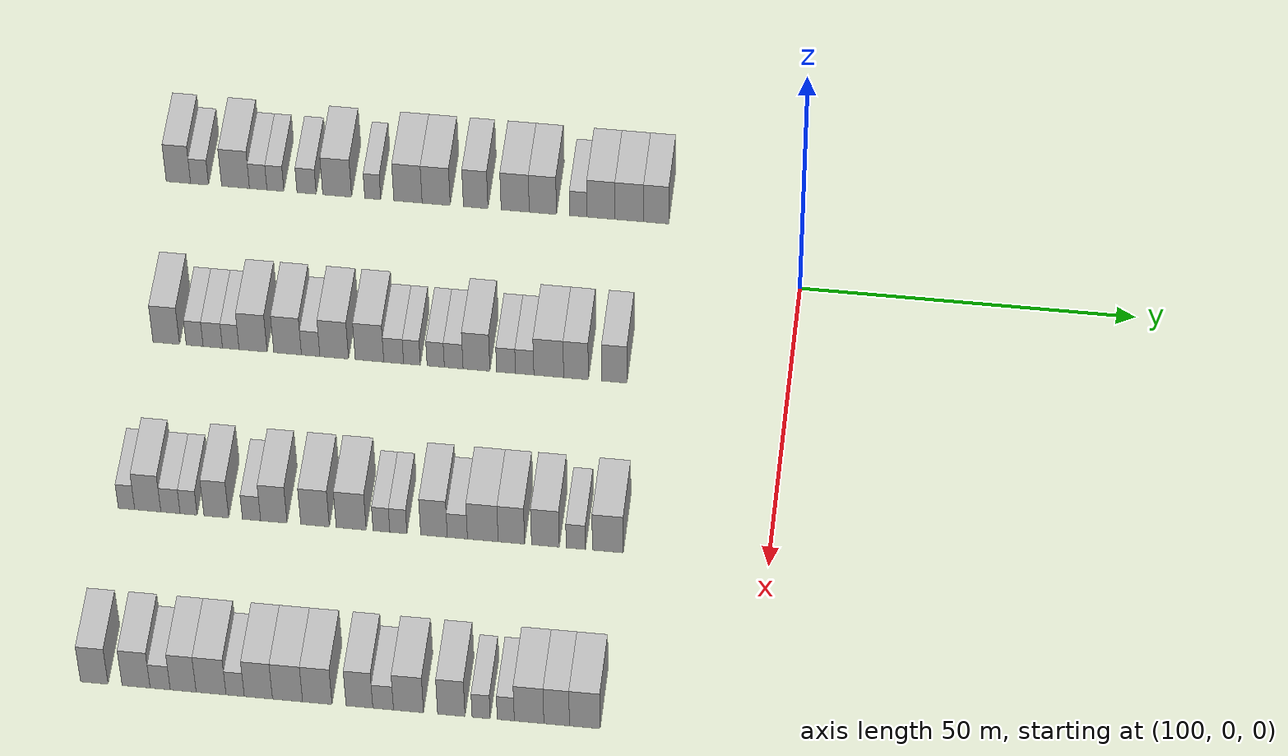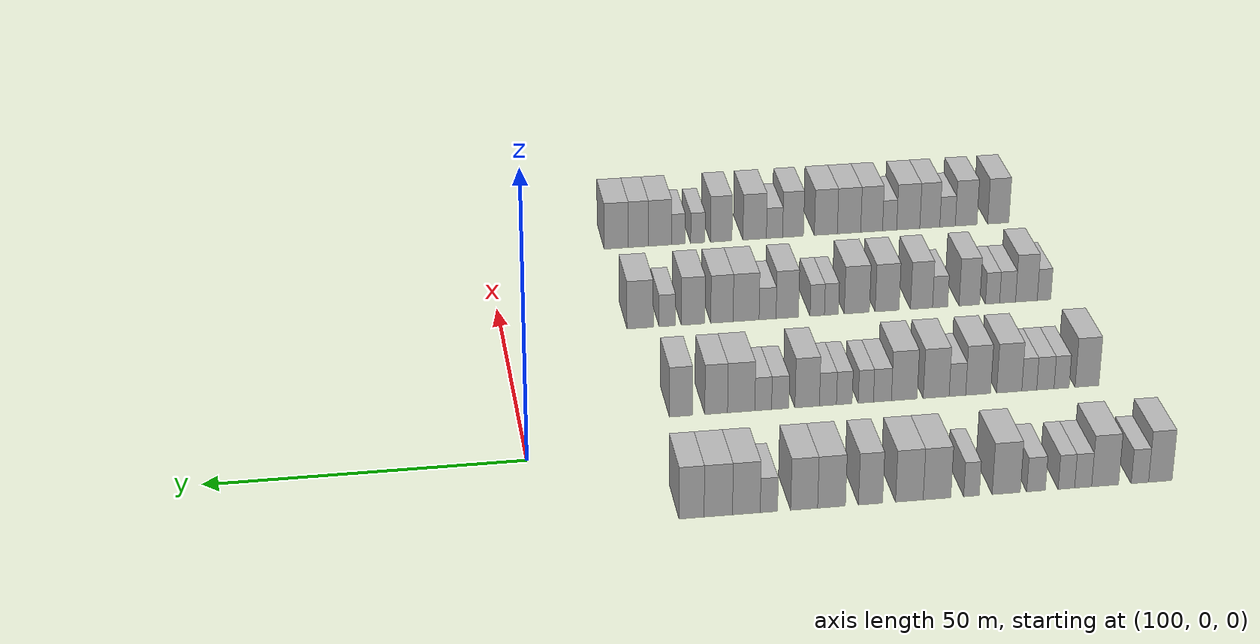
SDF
<sdf version="1.6">
 <world name="default">
  <model name="building_542">
   <static>1</static>
   <pose>85.0000 -95.3361 0 0.000000 0.000000 0.000000</pose>
   <link name="link">
    <pose>0 0 4.50 0 0 0</pose>
    <collision name="collision"><geometry><box><size>10.0000 3.7243 9.0000</size></box></geometry></collision>
    <visual name="visual">
     <cast_shadows>0</cast_shadows>
     <geometry><box><size>10.0000 3.7243 9.0000</size></box></geometry>
     <material>
      <script>
       <uri>model://HANNAS_wall/materials/scripts</uri>
       <uri>model://HANNAS_wall/materials/textures</uri>
       <name>vrc/HANNAS_wall</name>
      </script>
     </material>
    </visual>
   </link>
  </model>
  <model name="building_543">
   <static>1</static>
   <pose>85.0000 -92.1031 0 0.000000 0.000000 0.000000</pose>
   <link name="link">
    <pose>0 0 3.00 0 0 0</pose>
    <collision name="collision"><geometry><box><size>10.0000 2.7416 6.0000</size></box></geometry></collision>
    <visual name="visual">
     <cast_shadows>0</cast_shadows>
     <geometry><box><size>10.0000 2.7416 6.0000</size></box></geometry>
     <material>
      <script>
       <uri>model://HANNAS_wall/materials/scripts</uri>
       <uri>model://HANNAS_wall/materials/textures</uri>
       <name>vrc/HANNAS_wall</name>
      </script>
     </material>
    </visual>
   </link>
  </model>
  <model name="building_544">
   <static>1</static>
   <pose>85.0000 -86.6067 0 0.000000 0.000000 0.000000</pose>
   <link name="link">
    <pose>0 0 4.50 0 0 0</pose>
    <collision name="collision"><geometry><box><size>10.0000 4.2513 9.0000</size></box></geometry></collision>
    <visual name="visual">
     <cast_shadows>0</cast_shadows>
     <geometry><box><size>10.0000 4.2513 9.0000</size></box></geometry>
     <material>
      <script>
       <uri>model://HANNAS_wall/materials/scripts</uri>
       <uri>model://HANNAS_wall/materials/textures</uri>
       <name>vrc/HANNAS_wall</name>
      </script>
     </material>
    </visual>
   </link>
  </model>
  <model name="building_545">
   <static>1</static>
   <pose>85.0000 -83.1458 0 0.000000 0.000000 0.000000</pose>
   <link name="link">
    <pose>0 0 3.00 0 0 0</pose>
    <collision name="collision"><geometry><box><size>10.0000 2.6704 6.0000</size></box></geometry></collision>
    <visual name="visual">
     <cast_shadows>0</cast_shadows>
     <geometry><box><size>10.0000 2.6704 6.0000</size></box></geometry>
     <material>
      <script>
       <uri>model://HANNAS_wall/materials/scripts</uri>
       <uri>model://HANNAS_wall/materials/textures</uri>
       <name>vrc/HANNAS_wall</name>
      </script>
     </material>
    </visual>
   </link>
  </model>
  <model name="building_546">
   <static>1</static>
   <pose>85.0000 -80.5166 0 0.000000 0.000000 0.000000</pose>
   <link name="link">
    <pose>0 0 3.00 0 0 0</pose>
    <collision name="collision"><geometry><box><size>10.0000 2.5880 6.0000</size></box></geometry></collision>
    <visual name="visual">
     <cast_shadows>0</cast_shadows>
     <geometry><box><size>10.0000 2.5880 6.0000</size></box></geometry>
     <material>
      <script>
       <uri>model://HANNAS_wall/materials/scripts</uri>
       <uri>model://HANNAS_wall/materials/textures</uri>
       <name>vrc/HANNAS_wall</name>
      </script>
     </material>
    </visual>
   </link>
  </model>
  <model name="building_547">
   <static>1</static>
   <pose>85.0000 -75.7582 0 0.000000 0.000000 0.000000</pose>
   <link name="link">
    <pose>0 0 3.00 0 0 0</pose>
    <collision name="collision"><geometry><box><size>10.0000 2.9287 6.0000</size></box></geometry></collision>
    <visual name="visual">
     <cast_shadows>0</cast_shadows>
     <geometry><box><size>10.0000 2.9287 6.0000</size></box></geometry>
     <material>
      <script>
       <uri>model://HANNAS_wall/materials/scripts</uri>
       <uri>model://HANNAS_wall/materials/textures</uri>
       <name>vrc/HANNAS_wall</name>
      </script>
     </material>
    </visual>
   </link>
  </model>
  <model name="building_548">
   <static>1</static>
   <pose>85.0000 -71.0945 0 0.000000 0.000000 0.000000</pose>
   <link name="link">
    <pose>0 0 4.50 0 0 0</pose>
    <collision name="collision"><geometry><box><size>10.0000 4.3988 9.0000</size></box></geometry></collision>
    <visual name="visual">
     <cast_shadows>0</cast_shadows>
     <geometry><box><size>10.0000 4.3988 9.0000</size></box></geometry>
     <material>
      <script>
       <uri>model://HANNAS_wall/materials/scripts</uri>
       <uri>model://HANNAS_wall/materials/textures</uri>
       <name>vrc/HANNAS_wall</name>
      </script>
     </material>
    </visual>
   </link>
  </model>
  <model name="building_549">
   <static>1</static>
   <pose>85.0000 -65.6777 0 0.000000 0.000000 0.000000</pose>
   <link name="link">
    <pose>0 0 3.00 0 0 0</pose>
    <collision name="collision"><geometry><box><size>10.0000 2.4347 6.0000</size></box></geometry></collision>
    <visual name="visual">
     <cast_shadows>0</cast_shadows>
     <geometry><box><size>10.0000 2.4347 6.0000</size></box></geometry>
     <material>
      <script>
       <uri>model://HANNAS_wall/materials/scripts</uri>
       <uri>model://HANNAS_wall/materials/textures</uri>
       <name>vrc/HANNAS_wall</name>
      </script>
     </material>
    </visual>
   </link>
  </model>
  <model name="building_550">
   <static>1</static>
   <pose>85.0000 -60.3130 0 0.000000 0.000000 0.000000</pose>
   <link name="link">
    <pose>0 0 4.50 0 0 0</pose>
    <collision name="collision"><geometry><box><size>10.0000 4.2946 9.0000</size></box></geometry></collision>
    <visual name="visual">
     <cast_shadows>0</cast_shadows>
     <geometry><box><size>10.0000 4.2946 9.0000</size></box></geometry>
     <material>
      <script>
       <uri>model://HANNAS_wall/materials/scripts</uri>
       <uri>model://HANNAS_wall/materials/textures</uri>
       <name>vrc/HANNAS_wall</name>
      </script>
     </material>
    </visual>
   </link>
  </model>
  <model name="building_551">
   <static>1</static>
   <pose>85.0000 -56.0261 0 0.000000 0.000000 0.000000</pose>
   <link name="link">
    <pose>0 0 4.50 0 0 0</pose>
    <collision name="collision"><geometry><box><size>10.0000 4.2793 9.0000</size></box></geometry></collision>
    <visual name="visual">
     <cast_shadows>0</cast_shadows>
     <geometry><box><size>10.0000 4.2793 9.0000</size></box></geometry>
     <material>
      <script>
       <uri>model://HANNAS_wall/materials/scripts</uri>
       <uri>model://HANNAS_wall/materials/textures</uri>
       <name>vrc/HANNAS_wall</name>
      </script>
     </material>
    </visual>
   </link>
  </model>
  <model name="building_552">
   <static>1</static>
   <pose>85.0000 -50.0215 0 0.000000 0.000000 0.000000</pose>
   <link name="link">
    <pose>0 0 4.50 0 0 0</pose>
    <collision name="collision"><geometry><box><size>10.0000 3.7298 9.0000</size></box></geometry></collision>
    <visual name="visual">
     <cast_shadows>0</cast_shadows>
     <geometry><box><size>10.0000 3.7298 9.0000</size></box></geometry>
     <material>
      <script>
       <uri>model://HANNAS_wall/materials/scripts</uri>
       <uri>model://HANNAS_wall/materials/textures</uri>
       <name>vrc/HANNAS_wall</name>
      </script>
     </material>
    </visual>
   </link>
  </model>
  <model name="building_553">
   <static>1</static>
   <pose>85.0000 -44.0218 0 0.000000 0.000000 0.000000</pose>
   <link name="link">
    <pose>0 0 4.50 0 0 0</pose>
    <collision name="collision"><geometry><box><size>10.0000 4.2697 9.0000</size></box></geometry></collision>
    <visual name="visual">
     <cast_shadows>0</cast_shadows>
     <geometry><box><size>10.0000 4.2697 9.0000</size></box></geometry>
     <material>
      <script>
       <uri>model://HANNAS_wall/materials/scripts</uri>
       <uri>model://HANNAS_wall/materials/textures</uri>
       <name>vrc/HANNAS_wall</name>
      </script>
     </material>
    </visual>
   </link>
  </model>
  <model name="building_554">
   <static>1</static>
   <pose>85.0000 -39.8189 0 0.000000 0.000000 0.000000</pose>
   <link name="link">
    <pose>0 0 4.50 0 0 0</pose>
    <collision name="collision"><geometry><box><size>10.0000 4.1361 9.0000</size></box></geometry></collision>
    <visual name="visual">
     <cast_shadows>0</cast_shadows>
     <geometry><box><size>10.0000 4.1361 9.0000</size></box></geometry>
     <material>
      <script>
       <uri>model://HANNAS_wall/materials/scripts</uri>
       <uri>model://HANNAS_wall/materials/textures</uri>
       <name>vrc/HANNAS_wall</name>
      </script>
     </material>
    </visual>
   </link>
  </model>
  <model name="building_555">
   <static>1</static>
   <pose>85.0000 -34.4273 0 0.000000 0.000000 0.000000</pose>
   <link name="link">
    <pose>0 0 3.00 0 0 0</pose>
    <collision name="collision"><geometry><box><size>10.0000 2.6471 6.0000</size></box></geometry></collision>
    <visual name="visual">
     <cast_shadows>0</cast_shadows>
     <geometry><box><size>10.0000 2.6471 6.0000</size></box></geometry>
     <material>
      <script>
       <uri>model://HANNAS_wall/materials/scripts</uri>
       <uri>model://HANNAS_wall/materials/textures</uri>
       <name>vrc/HANNAS_wall</name>
      </script>
     </material>
    </visual>
   </link>
  </model>
  <model name="building_556">
   <static>1</static>
   <pose>85.0000 -30.9911 0 0.000000 0.000000 0.000000</pose>
   <link name="link">
    <pose>0 0 4.50 0 0 0</pose>
    <collision name="collision"><geometry><box><size>10.0000 4.2252 9.0000</size></box></geometry></collision>
    <visual name="visual">
     <cast_shadows>0</cast_shadows>
     <geometry><box><size>10.0000 4.2252 9.0000</size></box></geometry>
     <material>
      <script>
       <uri>model://HANNAS_wall/materials/scripts</uri>
       <uri>model://HANNAS_wall/materials/textures</uri>
       <name>vrc/HANNAS_wall</name>
      </script>
     </material>
    </visual>
   </link>
  </model>
  <model name="building_557">
   <static>1</static>
   <pose>85.0000 -26.7187 0 0.000000 0.000000 0.000000</pose>
   <link name="link">
    <pose>0 0 4.50 0 0 0</pose>
    <collision name="collision"><geometry><box><size>10.0000 4.3197 9.0000</size></box></geometry></collision>
    <visual name="visual">
     <cast_shadows>0</cast_shadows>
     <geometry><box><size>10.0000 4.3197 9.0000</size></box></geometry>
     <material>
      <script>
       <uri>model://HANNAS_wall/materials/scripts</uri>
       <uri>model://HANNAS_wall/materials/textures</uri>
       <name>vrc/HANNAS_wall</name>
      </script>
     </material>
    </visual>
   </link>
  </model>
  <model name="building_558">
   <static>1</static>
   <pose>85.0000 -22.6541 0 0.000000 0.000000 0.000000</pose>
   <link name="link">
    <pose>0 0 4.50 0 0 0</pose>
    <collision name="collision"><geometry><box><size>10.0000 3.8094 9.0000</size></box></geometry></collision>
    <visual name="visual">
     <cast_shadows>0</cast_shadows>
     <geometry><box><size>10.0000 3.8094 9.0000</size></box></geometry>
     <material>
      <script>
       <uri>model://HANNAS_wall/materials/scripts</uri>
       <uri>model://HANNAS_wall/materials/textures</uri>
       <name>vrc/HANNAS_wall</name>
      </script>
     </material>
    </visual>
   </link>
  </model>
  <model name="building_776">
   <static>1</static>
   <pose>115.0000 -92.3758 0 0.000000 0.000000 0.000000</pose>
   <link name="link">
    <pose>0 0 4.50 0 0 0</pose>
    <collision name="collision"><geometry><box><size>10.0000 3.9749 9.0000</size></box></geometry></collision>
    <visual name="visual">
     <cast_shadows>0</cast_shadows>
     <geometry><box><size>10.0000 3.9749 9.0000</size></box></geometry>
     <material>
      <script>
       <uri>model://HANNAS_wall/materials/scripts</uri>
       <uri>model://HANNAS_wall/materials/textures</uri>
       <name>vrc/HANNAS_wall</name>
      </script>
     </material>
    </visual>
   </link>
  </model>
  <model name="building_777">
   <static>1</static>
   <pose>115.0000 -88.1288 0 0.000000 0.000000 0.000000</pose>
   <link name="link">
    <pose>0 0 3.00 0 0 0</pose>
    <collision name="collision"><geometry><box><size>10.0000 2.5192 6.0000</size></box></geometry></collision>
    <visual name="visual">
     <cast_shadows>0</cast_shadows>
     <geometry><box><size>10.0000 2.5192 6.0000</size></box></geometry>
     <material>
      <script>
       <uri>model://HANNAS_wall/materials/scripts</uri>
       <uri>model://HANNAS_wall/materials/textures</uri>
       <name>vrc/HANNAS_wall</name>
      </script>
     </material>
    </visual>
   </link>
  </model>
  <model name="building_778">
   <static>1</static>
   <pose>115.0000 -85.4225 0 0.000000 0.000000 0.000000</pose>
   <link name="link">
    <pose>0 0 3.00 0 0 0</pose>
    <collision name="collision"><geometry><box><size>10.0000 2.8933 6.0000</size></box></geometry></collision>
    <visual name="visual">
     <cast_shadows>0</cast_shadows>
     <geometry><box><size>10.0000 2.8933 6.0000</size></box></geometry>
     <material>
      <script>
       <uri>model://HANNAS_wall/materials/scripts</uri>
       <uri>model://HANNAS_wall/materials/textures</uri>
       <name>vrc/HANNAS_wall</name>
      </script>
     </material>
    </visual>
   </link>
  </model>
  <model name="building_779">
   <static>1</static>
   <pose>115.0000 -82.7348 0 0.000000 0.000000 0.000000</pose>
   <link name="link">
    <pose>0 0 3.00 0 0 0</pose>
    <collision name="collision"><geometry><box><size>10.0000 2.4821 6.0000</size></box></geometry></collision>
    <visual name="visual">
     <cast_shadows>0</cast_shadows>
     <geometry><box><size>10.0000 2.4821 6.0000</size></box></geometry>
     <material>
      <script>
       <uri>model://HANNAS_wall/materials/scripts</uri>
       <uri>model://HANNAS_wall/materials/textures</uri>
       <name>vrc/HANNAS_wall</name>
      </script>
     </material>
    </visual>
   </link>
  </model>
  <model name="building_780">
   <static>1</static>
   <pose>115.0000 -79.3990 0 0.000000 0.000000 0.000000</pose>
   <link name="link">
    <pose>0 0 4.50 0 0 0</pose>
    <collision name="collision"><geometry><box><size>10.0000 4.1896 9.0000</size></box></geometry></collision>
    <visual name="visual">
     <cast_shadows>0</cast_shadows>
     <geometry><box><size>10.0000 4.1896 9.0000</size></box></geometry>
     <material>
      <script>
       <uri>model://HANNAS_wall/materials/scripts</uri>
       <uri>model://HANNAS_wall/materials/textures</uri>
       <name>vrc/HANNAS_wall</name>
      </script>
     </material>
    </visual>
   </link>
  </model>
  <model name="building_781">
   <static>1</static>
   <pose>115.0000 -74.2405 0 0.000000 0.000000 0.000000</pose>
   <link name="link">
    <pose>0 0 4.50 0 0 0</pose>
    <collision name="collision"><geometry><box><size>10.0000 4.1274 9.0000</size></box></geometry></collision>
    <visual name="visual">
     <cast_shadows>0</cast_shadows>
     <geometry><box><size>10.0000 4.1274 9.0000</size></box></geometry>
     <material>
      <script>
       <uri>model://HANNAS_wall/materials/scripts</uri>
       <uri>model://HANNAS_wall/materials/textures</uri>
       <name>vrc/HANNAS_wall</name>
      </script>
     </material>
    </visual>
   </link>
  </model>
  <model name="building_782">
   <static>1</static>
   <pose>115.0000 -70.8045 0 0.000000 0.000000 0.000000</pose>
   <link name="link">
    <pose>0 0 3.00 0 0 0</pose>
    <collision name="collision"><geometry><box><size>10.0000 2.7446 6.0000</size></box></geometry></collision>
    <visual name="visual">
     <cast_shadows>0</cast_shadows>
     <geometry><box><size>10.0000 2.7446 6.0000</size></box></geometry>
     <material>
      <script>
       <uri>model://HANNAS_wall/materials/scripts</uri>
       <uri>model://HANNAS_wall/materials/textures</uri>
       <name>vrc/HANNAS_wall</name>
      </script>
     </material>
    </visual>
   </link>
  </model>
  <model name="building_783">
   <static>1</static>
   <pose>115.0000 -67.2941 0 0.000000 0.000000 0.000000</pose>
   <link name="link">
    <pose>0 0 4.50 0 0 0</pose>
    <collision name="collision"><geometry><box><size>10.0000 4.2762 9.0000</size></box></geometry></collision>
    <visual name="visual">
     <cast_shadows>0</cast_shadows>
     <geometry><box><size>10.0000 4.2762 9.0000</size></box></geometry>
     <material>
      <script>
       <uri>model://HANNAS_wall/materials/scripts</uri>
       <uri>model://HANNAS_wall/materials/textures</uri>
       <name>vrc/HANNAS_wall</name>
      </script>
     </material>
    </visual>
   </link>
  </model>
  <model name="building_784">
   <static>1</static>
   <pose>115.0000 -62.0317 0 0.000000 0.000000 0.000000</pose>
   <link name="link">
    <pose>0 0 4.50 0 0 0</pose>
    <collision name="collision"><geometry><box><size>10.0000 4.2484 9.0000</size></box></geometry></collision>
    <visual name="visual">
     <cast_shadows>0</cast_shadows>
     <geometry><box><size>10.0000 4.2484 9.0000</size></box></geometry>
     <material>
      <script>
       <uri>model://HANNAS_wall/materials/scripts</uri>
       <uri>model://HANNAS_wall/materials/textures</uri>
       <name>vrc/HANNAS_wall</name>
      </script>
     </material>
    </visual>
   </link>
  </model>
  <model name="building_785">
   <static>1</static>
   <pose>115.0000 -58.4320 0 0.000000 0.000000 0.000000</pose>
   <link name="link">
    <pose>0 0 3.00 0 0 0</pose>
    <collision name="collision"><geometry><box><size>10.0000 2.9511 6.0000</size></box></geometry></collision>
    <visual name="visual">
     <cast_shadows>0</cast_shadows>
     <geometry><box><size>10.0000 2.9511 6.0000</size></box></geometry>
     <material>
      <script>
       <uri>model://HANNAS_wall/materials/scripts</uri>
       <uri>model://HANNAS_wall/materials/textures</uri>
       <name>vrc/HANNAS_wall</name>
      </script>
     </material>
    </visual>
   </link>
  </model>
  <model name="building_786">
   <static>1</static>
   <pose>115.0000 -55.7095 0 0.000000 0.000000 0.000000</pose>
   <link name="link">
    <pose>0 0 3.00 0 0 0</pose>
    <collision name="collision"><geometry><box><size>10.0000 2.4937 6.0000</size></box></geometry></collision>
    <visual name="visual">
     <cast_shadows>0</cast_shadows>
     <geometry><box><size>10.0000 2.4937 6.0000</size></box></geometry>
     <material>
      <script>
       <uri>model://HANNAS_wall/materials/scripts</uri>
       <uri>model://HANNAS_wall/materials/textures</uri>
       <name>vrc/HANNAS_wall</name>
      </script>
     </material>
    </visual>
   </link>
  </model>
  <model name="building_787">
   <static>1</static>
   <pose>115.0000 -52.1789 0 0.000000 0.000000 0.000000</pose>
   <link name="link">
    <pose>0 0 3.00 0 0 0</pose>
    <collision name="collision"><geometry><box><size>10.0000 2.5676 6.0000</size></box></geometry></collision>
    <visual name="visual">
     <cast_shadows>0</cast_shadows>
     <geometry><box><size>10.0000 2.5676 6.0000</size></box></geometry>
     <material>
      <script>
       <uri>model://HANNAS_wall/materials/scripts</uri>
       <uri>model://HANNAS_wall/materials/textures</uri>
       <name>vrc/HANNAS_wall</name>
      </script>
     </material>
    </visual>
   </link>
  </model>
  <model name="building_788">
   <static>1</static>
   <pose>115.0000 -49.5035 0 0.000000 0.000000 0.000000</pose>
   <link name="link">
    <pose>0 0 3.00 0 0 0</pose>
    <collision name="collision"><geometry><box><size>10.0000 2.7832 6.0000</size></box></geometry></collision>
    <visual name="visual">
     <cast_shadows>0</cast_shadows>
     <geometry><box><size>10.0000 2.7832 6.0000</size></box></geometry>
     <material>
      <script>
       <uri>model://HANNAS_wall/materials/scripts</uri>
       <uri>model://HANNAS_wall/materials/textures</uri>
       <name>vrc/HANNAS_wall</name>
      </script>
     </material>
    </visual>
   </link>
  </model>
  <model name="building_789">
   <static>1</static>
   <pose>115.0000 -46.1153 0 0.000000 0.000000 0.000000</pose>
   <link name="link">
    <pose>0 0 4.50 0 0 0</pose>
    <collision name="collision"><geometry><box><size>10.0000 3.9932 9.0000</size></box></geometry></collision>
    <visual name="visual">
     <cast_shadows>0</cast_shadows>
     <geometry><box><size>10.0000 3.9932 9.0000</size></box></geometry>
     <material>
      <script>
       <uri>model://HANNAS_wall/materials/scripts</uri>
       <uri>model://HANNAS_wall/materials/textures</uri>
       <name>vrc/HANNAS_wall</name>
      </script>
     </material>
    </visual>
   </link>
  </model>
  <model name="building_790">
   <static>1</static>
   <pose>115.0000 -41.7174 0 0.000000 0.000000 0.000000</pose>
   <link name="link">
    <pose>0 0 3.00 0 0 0</pose>
    <collision name="collision"><geometry><box><size>10.0000 2.8027 6.0000</size></box></geometry></collision>
    <visual name="visual">
     <cast_shadows>0</cast_shadows>
     <geometry><box><size>10.0000 2.8027 6.0000</size></box></geometry>
     <material>
      <script>
       <uri>model://HANNAS_wall/materials/scripts</uri>
       <uri>model://HANNAS_wall/materials/textures</uri>
       <name>vrc/HANNAS_wall</name>
      </script>
     </material>
    </visual>
   </link>
  </model>
  <model name="building_791">
   <static>1</static>
   <pose>115.0000 -38.9551 0 0.000000 0.000000 0.000000</pose>
   <link name="link">
    <pose>0 0 3.00 0 0 0</pose>
    <collision name="collision"><geometry><box><size>10.0000 2.7219 6.0000</size></box></geometry></collision>
    <visual name="visual">
     <cast_shadows>0</cast_shadows>
     <geometry><box><size>10.0000 2.7219 6.0000</size></box></geometry>
     <material>
      <script>
       <uri>model://HANNAS_wall/materials/scripts</uri>
       <uri>model://HANNAS_wall/materials/textures</uri>
       <name>vrc/HANNAS_wall</name>
      </script>
     </material>
    </visual>
   </link>
  </model>
  <model name="building_792">
   <static>1</static>
   <pose>115.0000 -35.3824 0 0.000000 0.000000 0.000000</pose>
   <link name="link">
    <pose>0 0 4.50 0 0 0</pose>
    <collision name="collision"><geometry><box><size>10.0000 4.4235 9.0000</size></box></geometry></collision>
    <visual name="visual">
     <cast_shadows>0</cast_shadows>
     <geometry><box><size>10.0000 4.4235 9.0000</size></box></geometry>
     <material>
      <script>
       <uri>model://HANNAS_wall/materials/scripts</uri>
       <uri>model://HANNAS_wall/materials/textures</uri>
       <name>vrc/HANNAS_wall</name>
      </script>
     </material>
    </visual>
   </link>
  </model>
  <model name="building_793">
   <static>1</static>
   <pose>115.0000 -31.3342 0 0.000000 0.000000 0.000000</pose>
   <link name="link">
    <pose>0 0 4.50 0 0 0</pose>
    <collision name="collision"><geometry><box><size>10.0000 3.6728 9.0000</size></box></geometry></collision>
    <visual name="visual">
     <cast_shadows>0</cast_shadows>
     <geometry><box><size>10.0000 3.6728 9.0000</size></box></geometry>
     <material>
      <script>
       <uri>model://HANNAS_wall/materials/scripts</uri>
       <uri>model://HANNAS_wall/materials/textures</uri>
       <name>vrc/HANNAS_wall</name>
      </script>
     </material>
    </visual>
   </link>
  </model>
  <model name="building_794">
   <static>1</static>
   <pose>115.0000 -25.6411 0 0.000000 0.000000 0.000000</pose>
   <link name="link">
    <pose>0 0 4.50 0 0 0</pose>
    <collision name="collision"><geometry><box><size>10.0000 3.7134 9.0000</size></box></geometry></collision>
    <visual name="visual">
     <cast_shadows>0</cast_shadows>
     <geometry><box><size>10.0000 3.7134 9.0000</size></box></geometry>
     <material>
      <script>
       <uri>model://HANNAS_wall/materials/scripts</uri>
       <uri>model://HANNAS_wall/materials/textures</uri>
       <name>vrc/HANNAS_wall</name>
      </script>
     </material>
    </visual>
   </link>
  </model>
  <model name="building_1009">
   <static>1</static>
   <pose>145.0000 -93.3875 0 0.000000 0.000000 0.000000</pose>
   <link name="link">
    <pose>0 0 3.00 0 0 0</pose>
    <collision name="collision"><geometry><box><size>10.0000 2.4016 6.0000</size></box></geometry></collision>
    <visual name="visual">
     <cast_shadows>0</cast_shadows>
     <geometry><box><size>10.0000 2.4016 6.0000</size></box></geometry>
     <material>
      <script>
       <uri>model://HANNAS_wall/materials/scripts</uri>
       <uri>model://HANNAS_wall/materials/textures</uri>
       <name>vrc/HANNAS_wall</name>
      </script>
     </material>
    </visual>
   </link>
  </model>
  <model name="building_1010">
   <static>1</static>
   <pose>145.0000 -90.2736 0 0.000000 0.000000 0.000000</pose>
   <link name="link">
    <pose>0 0 4.50 0 0 0</pose>
    <collision name="collision"><geometry><box><size>10.0000 3.8262 9.0000</size></box></geometry></collision>
    <visual name="visual">
     <cast_shadows>0</cast_shadows>
     <geometry><box><size>10.0000 3.8262 9.0000</size></box></geometry>
     <material>
      <script>
       <uri>model://HANNAS_wall/materials/scripts</uri>
       <uri>model://HANNAS_wall/materials/textures</uri>
       <name>vrc/HANNAS_wall</name>
      </script>
     </material>
    </visual>
   </link>
  </model>
  <model name="building_1011">
   <static>1</static>
   <pose>145.0000 -86.9529 0 0.000000 0.000000 0.000000</pose>
   <link name="link">
    <pose>0 0 3.00 0 0 0</pose>
    <collision name="collision"><geometry><box><size>10.0000 2.8152 6.0000</size></box></geometry></collision>
    <visual name="visual">
     <cast_shadows>0</cast_shadows>
     <geometry><box><size>10.0000 2.8152 6.0000</size></box></geometry>
     <material>
      <script>
       <uri>model://HANNAS_wall/materials/scripts</uri>
       <uri>model://HANNAS_wall/materials/textures</uri>
       <name>vrc/HANNAS_wall</name>
      </script>
     </material>
    </visual>
   </link>
  </model>
  <model name="building_1012">
   <static>1</static>
   <pose>145.0000 -84.2981 0 0.000000 0.000000 0.000000</pose>
   <link name="link">
    <pose>0 0 3.00 0 0 0</pose>
    <collision name="collision"><geometry><box><size>10.0000 2.4945 6.0000</size></box></geometry></collision>
    <visual name="visual">
     <cast_shadows>0</cast_shadows>
     <geometry><box><size>10.0000 2.4945 6.0000</size></box></geometry>
     <material>
      <script>
       <uri>model://HANNAS_wall/materials/scripts</uri>
       <uri>model://HANNAS_wall/materials/textures</uri>
       <name>vrc/HANNAS_wall</name>
      </script>
     </material>
    </visual>
   </link>
  </model>
  <model name="building_1013">
   <static>1</static>
   <pose>145.0000 -80.2375 0 0.000000 0.000000 0.000000</pose>
   <link name="link">
    <pose>0 0 4.50 0 0 0</pose>
    <collision name="collision"><geometry><box><size>10.0000 3.6266 9.0000</size></box></geometry></collision>
    <visual name="visual">
     <cast_shadows>0</cast_shadows>
     <geometry><box><size>10.0000 3.6266 9.0000</size></box></geometry>
     <material>
      <script>
       <uri>model://HANNAS_wall/materials/scripts</uri>
       <uri>model://HANNAS_wall/materials/textures</uri>
       <name>vrc/HANNAS_wall</name>
      </script>
     </material>
    </visual>
   </link>
  </model>
  <model name="building_1014">
   <static>1</static>
   <pose>145.0000 -75.0963 0 0.000000 0.000000 0.000000</pose>
   <link name="link">
    <pose>0 0 3.00 0 0 0</pose>
    <collision name="collision"><geometry><box><size>10.0000 2.6558 6.0000</size></box></geometry></collision>
    <visual name="visual">
     <cast_shadows>0</cast_shadows>
     <geometry><box><size>10.0000 2.6558 6.0000</size></box></geometry>
     <material>
      <script>
       <uri>model://HANNAS_wall/materials/scripts</uri>
       <uri>model://HANNAS_wall/materials/textures</uri>
       <name>vrc/HANNAS_wall</name>
      </script>
     </material>
    </visual>
   </link>
  </model>
  <model name="building_1015">
   <static>1</static>
   <pose>145.0000 -71.8394 0 0.000000 0.000000 0.000000</pose>
   <link name="link">
    <pose>0 0 4.50 0 0 0</pose>
    <collision name="collision"><geometry><box><size>10.0000 3.8580 9.0000</size></box></geometry></collision>
    <visual name="visual">
     <cast_shadows>0</cast_shadows>
     <geometry><box><size>10.0000 3.8580 9.0000</size></box></geometry>
     <material>
      <script>
       <uri>model://HANNAS_wall/materials/scripts</uri>
       <uri>model://HANNAS_wall/materials/textures</uri>
       <name>vrc/HANNAS_wall</name>
      </script>
     </material>
    </visual>
   </link>
  </model>
  <model name="building_1016">
   <static>1</static>
   <pose>145.0000 -65.8280 0 0.000000 0.000000 0.000000</pose>
   <link name="link">
    <pose>0 0 4.50 0 0 0</pose>
    <collision name="collision"><geometry><box><size>10.0000 4.1648 9.0000</size></box></geometry></collision>
    <visual name="visual">
     <cast_shadows>0</cast_shadows>
     <geometry><box><size>10.0000 4.1648 9.0000</size></box></geometry>
     <material>
      <script>
       <uri>model://HANNAS_wall/materials/scripts</uri>
       <uri>model://HANNAS_wall/materials/textures</uri>
       <name>vrc/HANNAS_wall</name>
      </script>
     </material>
    </visual>
   </link>
  </model>
  <model name="building_1017">
   <static>1</static>
   <pose>145.0000 -60.5591 0 0.000000 0.000000 0.000000</pose>
   <link name="link">
    <pose>0 0 4.50 0 0 0</pose>
    <collision name="collision"><geometry><box><size>10.0000 4.3730 9.0000</size></box></geometry></collision>
    <visual name="visual">
     <cast_shadows>0</cast_shadows>
     <geometry><box><size>10.0000 4.3730 9.0000</size></box></geometry>
     <material>
      <script>
       <uri>model://HANNAS_wall/materials/scripts</uri>
       <uri>model://HANNAS_wall/materials/textures</uri>
       <name>vrc/HANNAS_wall</name>
      </script>
     </material>
    </visual>
   </link>
  </model>
  <model name="building_1018">
   <static>1</static>
   <pose>145.0000 -56.1542 0 0.000000 0.000000 0.000000</pose>
   <link name="link">
    <pose>0 0 3.00 0 0 0</pose>
    <collision name="collision"><geometry><box><size>10.0000 2.4368 6.0000</size></box></geometry></collision>
    <visual name="visual">
     <cast_shadows>0</cast_shadows>
     <geometry><box><size>10.0000 2.4368 6.0000</size></box></geometry>
     <material>
      <script>
       <uri>model://HANNAS_wall/materials/scripts</uri>
       <uri>model://HANNAS_wall/materials/textures</uri>
       <name>vrc/HANNAS_wall</name>
      </script>
     </material>
    </visual>
   </link>
  </model>
  <model name="building_1019">
   <static>1</static>
   <pose>145.0000 -53.6908 0 0.000000 0.000000 0.000000</pose>
   <link name="link">
    <pose>0 0 3.00 0 0 0</pose>
    <collision name="collision"><geometry><box><size>10.0000 2.4900 6.0000</size></box></geometry></collision>
    <visual name="visual">
     <cast_shadows>0</cast_shadows>
     <geometry><box><size>10.0000 2.4900 6.0000</size></box></geometry>
     <material>
      <script>
       <uri>model://HANNAS_wall/materials/scripts</uri>
       <uri>model://HANNAS_wall/materials/textures</uri>
       <name>vrc/HANNAS_wall</name>
      </script>
     </material>
    </visual>
   </link>
  </model>
  <model name="building_1020">
   <static>1</static>
   <pose>145.0000 -48.5083 0 0.000000 0.000000 0.000000</pose>
   <link name="link">
    <pose>0 0 4.50 0 0 0</pose>
    <collision name="collision"><geometry><box><size>10.0000 3.8751 9.0000</size></box></geometry></collision>
    <visual name="visual">
     <cast_shadows>0</cast_shadows>
     <geometry><box><size>10.0000 3.8751 9.0000</size></box></geometry>
     <material>
      <script>
       <uri>model://HANNAS_wall/materials/scripts</uri>
       <uri>model://HANNAS_wall/materials/textures</uri>
       <name>vrc/HANNAS_wall</name>
      </script>
     </material>
    </visual>
   </link>
  </model>
  <model name="building_1021">
   <static>1</static>
   <pose>145.0000 -45.1075 0 0.000000 0.000000 0.000000</pose>
   <link name="link">
    <pose>0 0 3.00 0 0 0</pose>
    <collision name="collision"><geometry><box><size>10.0000 2.9265 6.0000</size></box></geometry></collision>
    <visual name="visual">
     <cast_shadows>0</cast_shadows>
     <geometry><box><size>10.0000 2.9265 6.0000</size></box></geometry>
     <material>
      <script>
       <uri>model://HANNAS_wall/materials/scripts</uri>
       <uri>model://HANNAS_wall/materials/textures</uri>
       <name>vrc/HANNAS_wall</name>
      </script>
     </material>
    </visual>
   </link>
  </model>
  <model name="building_1022">
   <static>1</static>
   <pose>145.0000 -41.4114 0 0.000000 0.000000 0.000000</pose>
   <link name="link">
    <pose>0 0 4.50 0 0 0</pose>
    <collision name="collision"><geometry><box><size>10.0000 4.4658 9.0000</size></box></geometry></collision>
    <visual name="visual">
     <cast_shadows>0</cast_shadows>
     <geometry><box><size>10.0000 4.4658 9.0000</size></box></geometry>
     <material>
      <script>
       <uri>model://HANNAS_wall/materials/scripts</uri>
       <uri>model://HANNAS_wall/materials/textures</uri>
       <name>vrc/HANNAS_wall</name>
      </script>
     </material>
    </visual>
   </link>
  </model>
  <model name="building_1023">
   <static>1</static>
   <pose>145.0000 -37.2599 0 0.000000 0.000000 0.000000</pose>
   <link name="link">
    <pose>0 0 4.50 0 0 0</pose>
    <collision name="collision"><geometry><box><size>10.0000 3.8371 9.0000</size></box></geometry></collision>
    <visual name="visual">
     <cast_shadows>0</cast_shadows>
     <geometry><box><size>10.0000 3.8371 9.0000</size></box></geometry>
     <material>
      <script>
       <uri>model://HANNAS_wall/materials/scripts</uri>
       <uri>model://HANNAS_wall/materials/textures</uri>
       <name>vrc/HANNAS_wall</name>
      </script>
     </material>
    </visual>
   </link>
  </model>
  <model name="building_1024">
   <static>1</static>
   <pose>145.0000 -32.3259 0 0.000000 0.000000 0.000000</pose>
   <link name="link">
    <pose>0 0 4.50 0 0 0</pose>
    <collision name="collision"><geometry><box><size>10.0000 4.0309 9.0000</size></box></geometry></collision>
    <visual name="visual">
     <cast_shadows>0</cast_shadows>
     <geometry><box><size>10.0000 4.0309 9.0000</size></box></geometry>
     <material>
      <script>
       <uri>model://HANNAS_wall/materials/scripts</uri>
       <uri>model://HANNAS_wall/materials/textures</uri>
       <name>vrc/HANNAS_wall</name>
      </script>
     </material>
    </visual>
   </link>
  </model>
  <model name="building_1025">
   <static>1</static>
   <pose>145.0000 -27.9084 0 0.000000 0.000000 0.000000</pose>
   <link name="link">
    <pose>0 0 3.00 0 0 0</pose>
    <collision name="collision"><geometry><box><size>10.0000 2.8042 6.0000</size></box></geometry></collision>
    <visual name="visual">
     <cast_shadows>0</cast_shadows>
     <geometry><box><size>10.0000 2.8042 6.0000</size></box></geometry>
     <material>
      <script>
       <uri>model://HANNAS_wall/materials/scripts</uri>
       <uri>model://HANNAS_wall/materials/textures</uri>
       <name>vrc/HANNAS_wall</name>
      </script>
     </material>
    </visual>
   </link>
  </model>
  <model name="building_1026">
   <static>1</static>
   <pose>145.0000 -23.2688 0 0.000000 0.000000 0.000000</pose>
   <link name="link">
    <pose>0 0 4.50 0 0 0</pose>
    <collision name="collision"><geometry><box><size>10.0000 4.4751 9.0000</size></box></geometry></collision>
    <visual name="visual">
     <cast_shadows>0</cast_shadows>
     <geometry><box><size>10.0000 4.4751 9.0000</size></box></geometry>
     <material>
      <script>
       <uri>model://HANNAS_wall/materials/scripts</uri>
       <uri>model://HANNAS_wall/materials/textures</uri>
       <name>vrc/HANNAS_wall</name>
      </script>
     </material>
    </visual>
   </link>
  </model>
  <model name="building_1227">
   <static>1</static>
   <pose>175.0000 -93.0509 0 0.000000 0.000000 0.000000</pose>
   <link name="link">
    <pose>0 0 4.50 0 0 0</pose>
    <collision name="collision"><geometry><box><size>10.0000 3.9422 9.0000</size></box></geometry></collision>
    <visual name="visual">
     <cast_shadows>0</cast_shadows>
     <geometry><box><size>10.0000 3.9422 9.0000</size></box></geometry>
     <material>
      <script>
       <uri>model://HANNAS_wall/materials/scripts</uri>
       <uri>model://HANNAS_wall/materials/textures</uri>
       <name>vrc/HANNAS_wall</name>
      </script>
     </material>
    </visual>
   </link>
  </model>
  <model name="building_1228">
   <static>1</static>
   <pose>175.0000 -87.0720 0 0.000000 0.000000 0.000000</pose>
   <link name="link">
    <pose>0 0 4.50 0 0 0</pose>
    <collision name="collision"><geometry><box><size>10.0000 4.0156 9.0000</size></box></geometry></collision>
    <visual name="visual">
     <cast_shadows>0</cast_shadows>
     <geometry><box><size>10.0000 4.0156 9.0000</size></box></geometry>
     <material>
      <script>
       <uri>model://HANNAS_wall/materials/scripts</uri>
       <uri>model://HANNAS_wall/materials/textures</uri>
       <name>vrc/HANNAS_wall</name>
      </script>
     </material>
    </visual>
   </link>
  </model>
  <model name="building_1229">
   <static>1</static>
   <pose>175.0000 -83.6254 0 0.000000 0.000000 0.000000</pose>
   <link name="link">
    <pose>0 0 3.00 0 0 0</pose>
    <collision name="collision"><geometry><box><size>10.0000 2.8776 6.0000</size></box></geometry></collision>
    <visual name="visual">
     <cast_shadows>0</cast_shadows>
     <geometry><box><size>10.0000 2.8776 6.0000</size></box></geometry>
     <material>
      <script>
       <uri>model://HANNAS_wall/materials/scripts</uri>
       <uri>model://HANNAS_wall/materials/textures</uri>
       <name>vrc/HANNAS_wall</name>
      </script>
     </material>
    </visual>
   </link>
  </model>
  <model name="building_1230">
   <static>1</static>
   <pose>175.0000 -80.3360 0 0.000000 0.000000 0.000000</pose>
   <link name="link">
    <pose>0 0 4.50 0 0 0</pose>
    <collision name="collision"><geometry><box><size>10.0000 3.7013 9.0000</size></box></geometry></collision>
    <visual name="visual">
     <cast_shadows>0</cast_shadows>
     <geometry><box><size>10.0000 3.7013 9.0000</size></box></geometry>
     <material>
      <script>
       <uri>model://HANNAS_wall/materials/scripts</uri>
       <uri>model://HANNAS_wall/materials/textures</uri>
       <name>vrc/HANNAS_wall</name>
      </script>
     </material>
    </visual>
   </link>
  </model>
  <model name="building_1231">
   <static>1</static>
   <pose>175.0000 -76.3501 0 0.000000 0.000000 0.000000</pose>
   <link name="link">
    <pose>0 0 4.50 0 0 0</pose>
    <collision name="collision"><geometry><box><size>10.0000 4.2706 9.0000</size></box></geometry></collision>
    <visual name="visual">
     <cast_shadows>0</cast_shadows>
     <geometry><box><size>10.0000 4.2706 9.0000</size></box></geometry>
     <material>
      <script>
       <uri>model://HANNAS_wall/materials/scripts</uri>
       <uri>model://HANNAS_wall/materials/textures</uri>
       <name>vrc/HANNAS_wall</name>
      </script>
     </material>
    </visual>
   </link>
  </model>
  <model name="building_1232">
   <static>1</static>
   <pose>175.0000 -72.9116 0 0.000000 0.000000 0.000000</pose>
   <link name="link">
    <pose>0 0 3.00 0 0 0</pose>
    <collision name="collision"><geometry><box><size>10.0000 2.6063 6.0000</size></box></geometry></collision>
    <visual name="visual">
     <cast_shadows>0</cast_shadows>
     <geometry><box><size>10.0000 2.6063 6.0000</size></box></geometry>
     <material>
      <script>
       <uri>model://HANNAS_wall/materials/scripts</uri>
       <uri>model://HANNAS_wall/materials/textures</uri>
       <name>vrc/HANNAS_wall</name>
      </script>
     </material>
    </visual>
   </link>
  </model>
  <model name="building_1233">
   <static>1</static>
   <pose>175.0000 -69.5982 0 0.000000 0.000000 0.000000</pose>
   <link name="link">
    <pose>0 0 4.50 0 0 0</pose>
    <collision name="collision"><geometry><box><size>10.0000 4.0205 9.0000</size></box></geometry></collision>
    <visual name="visual">
     <cast_shadows>0</cast_shadows>
     <geometry><box><size>10.0000 4.0205 9.0000</size></box></geometry>
     <material>
      <script>
       <uri>model://HANNAS_wall/materials/scripts</uri>
       <uri>model://HANNAS_wall/materials/textures</uri>
       <name>vrc/HANNAS_wall</name>
      </script>
     </material>
    </visual>
   </link>
  </model>
  <model name="building_1234">
   <static>1</static>
   <pose>175.0000 -65.4411 0 0.000000 0.000000 0.000000</pose>
   <link name="link">
    <pose>0 0 4.50 0 0 0</pose>
    <collision name="collision"><geometry><box><size>10.0000 4.2936 9.0000</size></box></geometry></collision>
    <visual name="visual">
     <cast_shadows>0</cast_shadows>
     <geometry><box><size>10.0000 4.2936 9.0000</size></box></geometry>
     <material>
      <script>
       <uri>model://HANNAS_wall/materials/scripts</uri>
       <uri>model://HANNAS_wall/materials/textures</uri>
       <name>vrc/HANNAS_wall</name>
      </script>
     </material>
    </visual>
   </link>
  </model>
  <model name="building_1235">
   <static>1</static>
   <pose>175.0000 -61.1954 0 0.000000 0.000000 0.000000</pose>
   <link name="link">
    <pose>0 0 4.50 0 0 0</pose>
    <collision name="collision"><geometry><box><size>10.0000 4.1979 9.0000</size></box></geometry></collision>
    <visual name="visual">
     <cast_shadows>0</cast_shadows>
     <geometry><box><size>10.0000 4.1979 9.0000</size></box></geometry>
     <material>
      <script>
       <uri>model://HANNAS_wall/materials/scripts</uri>
       <uri>model://HANNAS_wall/materials/textures</uri>
       <name>vrc/HANNAS_wall</name>
      </script>
     </material>
    </visual>
   </link>
  </model>
  <model name="building_1236">
   <static>1</static>
   <pose>175.0000 -55.1933 0 0.000000 0.000000 0.000000</pose>
   <link name="link">
    <pose>0 0 4.50 0 0 0</pose>
    <collision name="collision"><geometry><box><size>10.0000 3.8064 9.0000</size></box></geometry></collision>
    <visual name="visual">
     <cast_shadows>0</cast_shadows>
     <geometry><box><size>10.0000 3.8064 9.0000</size></box></geometry>
     <material>
      <script>
       <uri>model://HANNAS_wall/materials/scripts</uri>
       <uri>model://HANNAS_wall/materials/textures</uri>
       <name>vrc/HANNAS_wall</name>
      </script>
     </material>
    </visual>
   </link>
  </model>
  <model name="building_1237">
   <static>1</static>
   <pose>175.0000 -51.8184 0 0.000000 0.000000 0.000000</pose>
   <link name="link">
    <pose>0 0 3.00 0 0 0</pose>
    <collision name="collision"><geometry><box><size>10.0000 2.9434 6.0000</size></box></geometry></collision>
    <visual name="visual">
     <cast_shadows>0</cast_shadows>
     <geometry><box><size>10.0000 2.9434 6.0000</size></box></geometry>
     <material>
      <script>
       <uri>model://HANNAS_wall/materials/scripts</uri>
       <uri>model://HANNAS_wall/materials/textures</uri>
       <name>vrc/HANNAS_wall</name>
      </script>
     </material>
    </visual>
   </link>
  </model>
  <model name="building_1238">
   <static>1</static>
   <pose>175.0000 -48.2109 0 0.000000 0.000000 0.000000</pose>
   <link name="link">
    <pose>0 0 4.50 0 0 0</pose>
    <collision name="collision"><geometry><box><size>10.0000 4.2716 9.0000</size></box></geometry></collision>
    <visual name="visual">
     <cast_shadows>0</cast_shadows>
     <geometry><box><size>10.0000 4.2716 9.0000</size></box></geometry>
     <material>
      <script>
       <uri>model://HANNAS_wall/materials/scripts</uri>
       <uri>model://HANNAS_wall/materials/textures</uri>
       <name>vrc/HANNAS_wall</name>
      </script>
     </material>
    </visual>
   </link>
  </model>
  <model name="building_1239">
   <static>1</static>
   <pose>175.0000 -42.1253 0 0.000000 0.000000 0.000000</pose>
   <link name="link">
    <pose>0 0 4.50 0 0 0</pose>
    <collision name="collision"><geometry><box><size>10.0000 3.8995 9.0000</size></box></geometry></collision>
    <visual name="visual">
     <cast_shadows>0</cast_shadows>
     <geometry><box><size>10.0000 3.8995 9.0000</size></box></geometry>
     <material>
      <script>
       <uri>model://HANNAS_wall/materials/scripts</uri>
       <uri>model://HANNAS_wall/materials/textures</uri>
       <name>vrc/HANNAS_wall</name>
      </script>
     </material>
    </visual>
   </link>
  </model>
  <model name="building_1240">
   <static>1</static>
   <pose>175.0000 -37.8887 0 0.000000 0.000000 0.000000</pose>
   <link name="link">
    <pose>0 0 3.00 0 0 0</pose>
    <collision name="collision"><geometry><box><size>10.0000 2.5736 6.0000</size></box></geometry></collision>
    <visual name="visual">
     <cast_shadows>0</cast_shadows>
     <geometry><box><size>10.0000 2.5736 6.0000</size></box></geometry>
     <material>
      <script>
       <uri>model://HANNAS_wall/materials/scripts</uri>
       <uri>model://HANNAS_wall/materials/textures</uri>
       <name>vrc/HANNAS_wall</name>
      </script>
     </material>
    </visual>
   </link>
  </model>
  <model name="building_1241">
   <static>1</static>
   <pose>175.0000 -34.3921 0 0.000000 0.000000 0.000000</pose>
   <link name="link">
    <pose>0 0 3.00 0 0 0</pose>
    <collision name="collision"><geometry><box><size>10.0000 2.4195 6.0000</size></box></geometry></collision>
    <visual name="visual">
     <cast_shadows>0</cast_shadows>
     <geometry><box><size>10.0000 2.4195 6.0000</size></box></geometry>
     <material>
      <script>
       <uri>model://HANNAS_wall/materials/scripts</uri>
       <uri>model://HANNAS_wall/materials/textures</uri>
       <name>vrc/HANNAS_wall</name>
      </script>
     </material>
    </visual>
   </link>
  </model>
  <model name="building_1242">
   <static>1</static>
   <pose>175.0000 -31.0860 0 0.000000 0.000000 0.000000</pose>
   <link name="link">
    <pose>0 0 4.50 0 0 0</pose>
    <collision name="collision"><geometry><box><size>10.0000 4.1928 9.0000</size></box></geometry></collision>
    <visual name="visual">
     <cast_shadows>0</cast_shadows>
     <geometry><box><size>10.0000 4.1928 9.0000</size></box></geometry>
     <material>
      <script>
       <uri>model://HANNAS_wall/materials/scripts</uri>
       <uri>model://HANNAS_wall/materials/textures</uri>
       <name>vrc/HANNAS_wall</name>
      </script>
     </material>
    </visual>
   </link>
  </model>
  <model name="building_1243">
   <static>1</static>
   <pose>175.0000 -27.1757 0 0.000000 0.000000 0.000000</pose>
   <link name="link">
    <pose>0 0 4.50 0 0 0</pose>
    <collision name="collision"><geometry><box><size>10.0000 3.6277 9.0000</size></box></geometry></collision>
    <visual name="visual">
     <cast_shadows>0</cast_shadows>
     <geometry><box><size>10.0000 3.6277 9.0000</size></box></geometry>
     <material>
      <script>
       <uri>model://HANNAS_wall/materials/scripts</uri>
       <uri>model://HANNAS_wall/materials/textures</uri>
       <name>vrc/HANNAS_wall</name>
      </script>
     </material>
    </visual>
   </link>
  </model>
  <model name="building_1244">
   <static>1</static>
   <pose>175.0000 -23.1855 0 0.000000 0.000000 0.000000</pose>
   <link name="link">
    <pose>0 0 4.50 0 0 0</pose>
    <collision name="collision"><geometry><box><size>10.0000 4.3525 9.0000</size></box></geometry></collision>
    <visual name="visual">
     <cast_shadows>0</cast_shadows>
     <geometry><box><size>10.0000 4.3525 9.0000</size></box></geometry>
     <material>
      <script>
       <uri>model://HANNAS_wall/materials/scripts</uri>
       <uri>model://HANNAS_wall/materials/textures</uri>
       <name>vrc/HANNAS_wall</name>
      </script>
     </material>
    </visual>
   </link>
  </model>
 </world>
</sdf>
